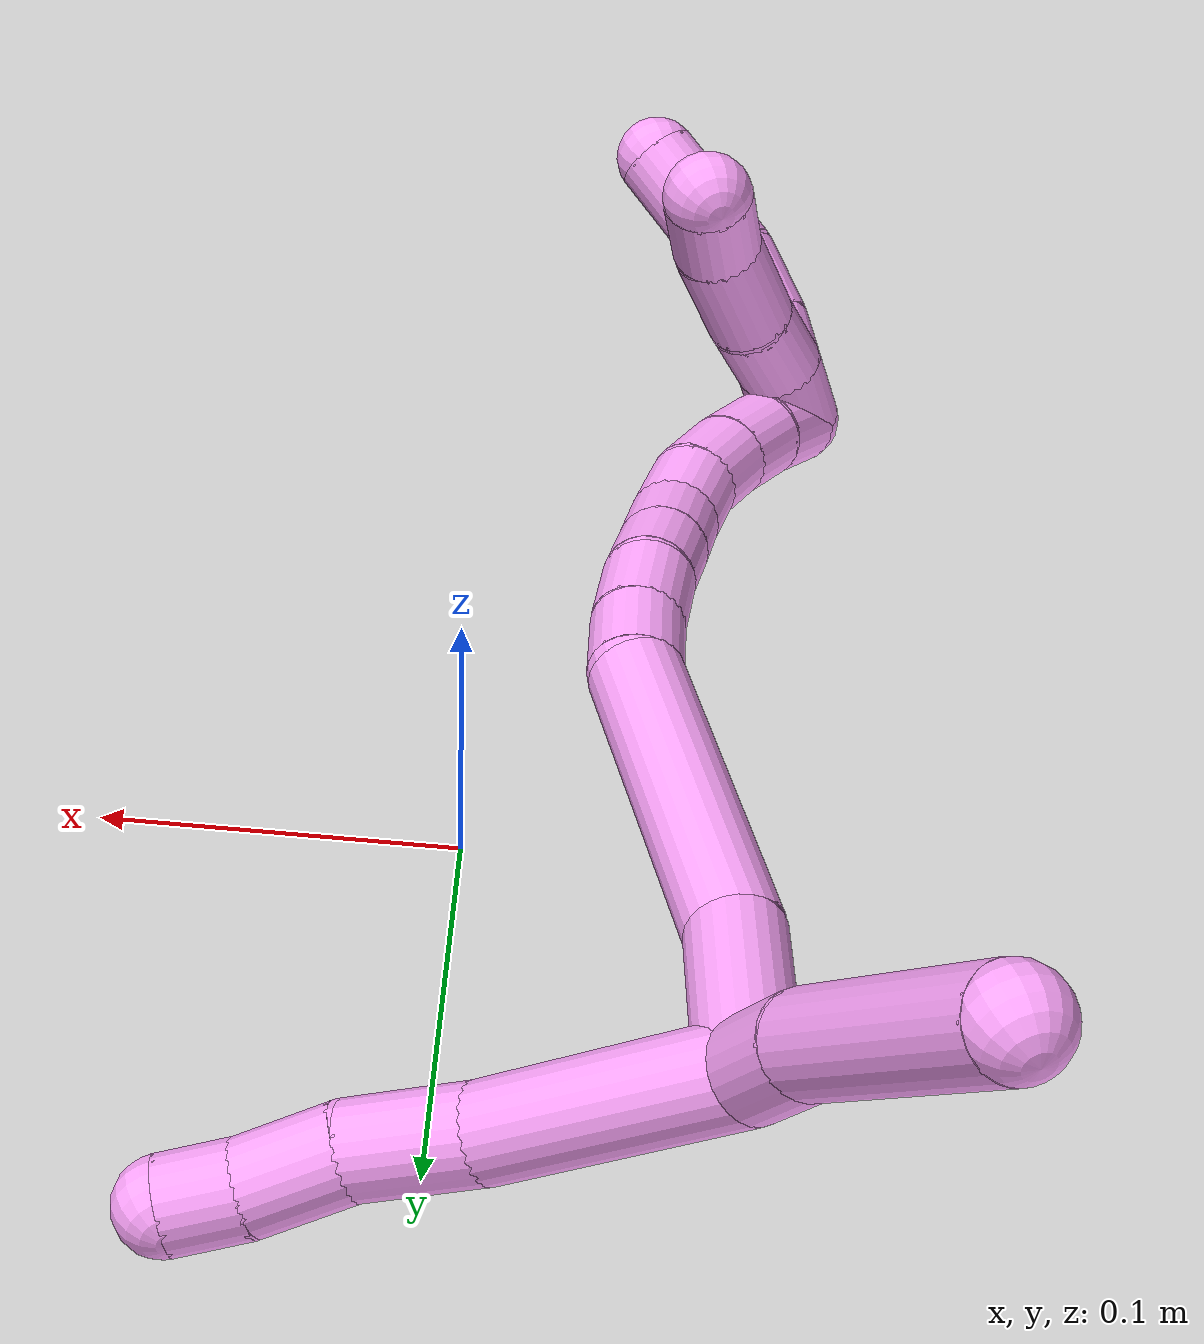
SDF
<sdf version="1.7">
 <world name="default">
  <model name="4">
   <static>0</static>
   <link name="4">
    <collision name="collision-cylinder-e_1_2_8">
     <pose>-0.007603 0.031212 -0.014438 -2.00407 -0.217587 0.338474</pose>
     <geometry><cylinder><radius>0.0125</radius><length>0.070441</length></cylinder></geometry>
     <surface>
      <friction><ode><mu>1.16</mu><mu2>1.16</mu2><slip1>0</slip1><slip2>0</slip2></ode></friction>
      <contact><ode><kp>1e+06</kp><kd>1</kd><max_vel>0</max_vel><min_depth>0.001</min_depth></ode></contact>
     </surface>
    </collision>
    <visual name="visual-cylinder-e_1_2_8">
     <pose>-0.007603 0.031212 -0.014438 -2.00407 -0.217587 0.338474</pose>
     <geometry><cylinder><radius>0.0125</radius><length>0.070441</length></cylinder></geometry>
     <material><ambient>1 0.65098 0.996078 1</ambient></material>
    </visual>
    <collision name="collision-cylinder-e_2_8_9">
     <pose>-0.014588 0.077792 -0.034529 -1.92327 0.03773 -0.054074</pose>
     <geometry><cylinder><radius>0.0125</radius><length>0.032772</length></cylinder></geometry>
     <surface>
      <friction><ode><mu>1.16</mu><mu2>1.16</mu2><slip1>0</slip1><slip2>0</slip2></ode></friction>
      <contact><ode><kp>1e+06</kp><kd>1</kd><max_vel>0</max_vel><min_depth>0.001</min_depth></ode></contact>
     </surface>
    </collision>
    <visual name="visual-cylinder-e_2_8_9">
     <pose>-0.014588 0.077792 -0.034529 -1.92327 0.03773 -0.054074</pose>
     <geometry><cylinder><radius>0.0125</radius><length>0.032772</length></cylinder></geometry>
     <material><ambient>1 0.65098 0.996078 1</ambient></material>
    </visual>
    <collision name="collision-cylinder-e_3_9_10">
     <pose>-0.014344 0.106396 -0.042171 -1.71997 -0.027903 0.032409</pose>
     <geometry><cylinder><radius>0.0125</radius><length>0.026779</length></cylinder></geometry>
     <surface>
      <friction><ode><mu>1.16</mu><mu2>1.16</mu2><slip1>0</slip1><slip2>0</slip2></ode></friction>
      <contact><ode><kp>1e+06</kp><kd>1</kd><max_vel>0</max_vel><min_depth>0.001</min_depth></ode></contact>
     </surface>
    </collision>
    <visual name="visual-cylinder-e_3_9_10">
     <pose>-0.014344 0.106396 -0.042171 -1.71997 -0.027903 0.032409</pose>
     <geometry><cylinder><radius>0.0125</radius><length>0.026779</length></cylinder></geometry>
     <material><ambient>1 0.65098 0.996078 1</ambient></material>
    </visual>
    <collision name="collision-cylinder-e_4_10_6">
     <pose>-0.013127 0.129372 -0.045796 -1.73712 0.159593 -0.188459</pose>
     <geometry><cylinder><radius>0.0125</radius><length>0.020008</length></cylinder></geometry>
     <surface>
      <friction><ode><mu>1.16</mu><mu2>1.16</mu2><slip1>0</slip1><slip2>0</slip2></ode></friction>
      <contact><ode><kp>1e+06</kp><kd>1</kd><max_vel>0</max_vel><min_depth>0.001</min_depth></ode></contact>
     </surface>
    </collision>
    <visual name="visual-cylinder-e_4_10_6">
     <pose>-0.013127 0.129372 -0.045796 -1.73712 0.159593 -0.188459</pose>
     <geometry><cylinder><radius>0.0125</radius><length>0.020008</length></cylinder></geometry>
     <material><ambient>1 0.65098 0.996078 1</ambient></material>
    </visual>
    <collision name="collision-cylinder-e_1_2_11">
     <pose>0.008746 -0.007014 0.007058 0.782242 0.721088 0.308474</pose>
     <geometry><cylinder><radius>0.0125</radius><length>0.026496</length></cylinder></geometry>
     <surface>
      <friction><ode><mu>1.16</mu><mu2>1.16</mu2><slip1>0</slip1><slip2>0</slip2></ode></friction>
      <contact><ode><kp>1e+06</kp><kd>1</kd><max_vel>0</max_vel><min_depth>0.001</min_depth></ode></contact>
     </surface>
    </collision>
    <visual name="visual-cylinder-e_1_2_11">
     <pose>0.008746 -0.007014 0.007058 0.782242 0.721088 0.308474</pose>
     <geometry><cylinder><radius>0.0125</radius><length>0.026496</length></cylinder></geometry>
     <material><ambient>1 0.65098 0.996078 1</ambient></material>
    </visual>
    <collision name="collision-cylinder-e_2_11_5">
     <pose>0.03788 -0.032635 0.038383 0.654169 0.588024 0.204735</pose>
     <geometry><cylinder><radius>0.0125</radius><length>0.073504</length></cylinder></geometry>
     <surface>
      <friction><ode><mu>1.16</mu><mu2>1.16</mu2><slip1>0</slip1><slip2>0</slip2></ode></friction>
      <contact><ode><kp>1e+06</kp><kd>1</kd><max_vel>0</max_vel><min_depth>0.001</min_depth></ode></contact>
     </surface>
    </collision>
    <visual name="visual-cylinder-e_2_11_5">
     <pose>0.03788 -0.032635 0.038383 0.654169 0.588024 0.204735</pose>
     <geometry><cylinder><radius>0.0125</radius><length>0.073504</length></cylinder></geometry>
     <material><ambient>1 0.65098 0.996078 1</ambient></material>
    </visual>
    <collision name="collision-cylinder-e_1_2_12">
     <pose>-0.004466 -0.005064 -0.022501 2.92021 -0.191271 -1.42409</pose>
     <geometry><cylinder><radius>0.0125</radius><length>0.046984</length></cylinder></geometry>
     <surface>
      <friction><ode><mu>1.16</mu><mu2>1.16</mu2><slip1>0</slip1><slip2>0</slip2></ode></friction>
      <contact><ode><kp>1e+06</kp><kd>1</kd><max_vel>0</max_vel><min_depth>0.001</min_depth></ode></contact>
     </surface>
    </collision>
    <visual name="visual-cylinder-e_1_2_12">
     <pose>-0.004466 -0.005064 -0.022501 2.92021 -0.191271 -1.42409</pose>
     <geometry><cylinder><radius>0.0125</radius><length>0.046984</length></cylinder></geometry>
     <material><ambient>1 0.65098 0.996078 1</ambient></material>
    </visual>
    <collision name="collision-cylinder-e_2_12_13">
     <pose>-0.007124 -0.012822 -0.08949 3.08112 0.040537 1.18086</pose>
     <geometry><cylinder><radius>0.0125</radius><length>0.089214</length></cylinder></geometry>
     <surface>
      <friction><ode><mu>1.16</mu><mu2>1.16</mu2><slip1>0</slip1><slip2>0</slip2></ode></friction>
      <contact><ode><kp>1e+06</kp><kd>1</kd><max_vel>0</max_vel><min_depth>0.001</min_depth></ode></contact>
     </surface>
    </collision>
    <visual name="visual-cylinder-e_2_12_13">
     <pose>-0.007124 -0.012822 -0.08949 3.08112 0.040537 1.18086</pose>
     <geometry><cylinder><radius>0.0125</radius><length>0.089214</length></cylinder></geometry>
     <material><ambient>1 0.65098 0.996078 1</ambient></material>
    </visual>
    <collision name="collision-cylinder-e_3_13_14">
     <pose>-0.007287 -0.018525 -0.144054 2.85143 -0.185281 -1.13277</pose>
     <geometry><cylinder><radius>0.0125</radius><length>0.021396</length></cylinder></geometry>
     <surface>
      <friction><ode><mu>1.16</mu><mu2>1.16</mu2><slip1>0</slip1><slip2>0</slip2></ode></friction>
      <contact><ode><kp>1e+06</kp><kd>1</kd><max_vel>0</max_vel><min_depth>0.001</min_depth></ode></contact>
     </surface>
    </collision>
    <visual name="visual-cylinder-e_3_13_14">
     <pose>-0.007287 -0.018525 -0.144054 2.85143 -0.185281 -1.13277</pose>
     <geometry><cylinder><radius>0.0125</radius><length>0.021396</length></cylinder></geometry>
     <material><ambient>1 0.65098 0.996078 1</ambient></material>
    </visual>
    <collision name="collision-cylinder-e_4_14_15">
     <pose>-0.011701 -0.025633 -0.163959 2.74641 -0.225483 -1.02938</pose>
     <geometry><cylinder><radius>0.0125</radius><length>0.021854</length></cylinder></geometry>
     <surface>
      <friction><ode><mu>1.16</mu><mu2>1.16</mu2><slip1>0</slip1><slip2>0</slip2></ode></friction>
      <contact><ode><kp>1e+06</kp><kd>1</kd><max_vel>0</max_vel><min_depth>0.001</min_depth></ode></contact>
     </surface>
    </collision>
    <visual name="visual-cylinder-e_4_14_15">
     <pose>-0.011701 -0.025633 -0.163959 2.74641 -0.225483 -1.02938</pose>
     <geometry><cylinder><radius>0.0125</radius><length>0.021854</length></cylinder></geometry>
     <material><ambient>1 0.65098 0.996078 1</ambient></material>
    </visual>
    <collision name="collision-cylinder-e_5_15_16">
     <pose>-0.018165 -0.033317 -0.182505 2.75154 -0.403296 -1.60508</pose>
     <geometry><cylinder><radius>0.0125</radius><length>0.020492</length></cylinder></geometry>
     <surface>
      <friction><ode><mu>1.16</mu><mu2>1.16</mu2><slip1>0</slip1><slip2>0</slip2></ode></friction>
      <contact><ode><kp>1e+06</kp><kd>1</kd><max_vel>0</max_vel><min_depth>0.001</min_depth></ode></contact>
     </surface>
    </collision>
    <visual name="visual-cylinder-e_5_15_16">
     <pose>-0.018165 -0.033317 -0.182505 2.75154 -0.403296 -1.60508</pose>
     <geometry><cylinder><radius>0.0125</radius><length>0.020492</length></cylinder></geometry>
     <material><ambient>1 0.65098 0.996078 1</ambient></material>
    </visual>
    <collision name="collision-cylinder-e_6_16_17">
     <pose>-0.026104 -0.040276 -0.199798 2.76659 -0.401866 -1.64168</pose>
     <geometry><cylinder><radius>0.0125</radius><length>0.02003</length></cylinder></geometry>
     <surface>
      <friction><ode><mu>1.16</mu><mu2>1.16</mu2><slip1>0</slip1><slip2>0</slip2></ode></friction>
      <contact><ode><kp>1e+06</kp><kd>1</kd><max_vel>0</max_vel><min_depth>0.001</min_depth></ode></contact>
     </surface>
    </collision>
    <visual name="visual-cylinder-e_6_16_17">
     <pose>-0.026104 -0.040276 -0.199798 2.76659 -0.401866 -1.64168</pose>
     <geometry><cylinder><radius>0.0125</radius><length>0.02003</length></cylinder></geometry>
     <material><ambient>1 0.65098 0.996078 1</ambient></material>
    </visual>
    <collision name="collision-cylinder-e_7_17_18">
     <pose>-0.032625 -0.048673 -0.216639 2.59565 -0.263063 -0.882903</pose>
     <geometry><cylinder><radius>0.0125</radius><length>0.020029</length></cylinder></geometry>
     <surface>
      <friction><ode><mu>1.16</mu><mu2>1.16</mu2><slip1>0</slip1><slip2>0</slip2></ode></friction>
      <contact><ode><kp>1e+06</kp><kd>1</kd><max_vel>0</max_vel><min_depth>0.001</min_depth></ode></contact>
     </surface>
    </collision>
    <visual name="visual-cylinder-e_7_17_18">
     <pose>-0.032625 -0.048673 -0.216639 2.59565 -0.263063 -0.882903</pose>
     <geometry><cylinder><radius>0.0125</radius><length>0.020029</length></cylinder></geometry>
     <material><ambient>1 0.65098 0.996078 1</ambient></material>
    </visual>
    <collision name="collision-cylinder-e_8_18_19">
     <pose>-0.039064 -0.059993 -0.231657 2.39096 -0.393548 -0.936846</pose>
     <geometry><cylinder><radius>0.0125</radius><length>0.020001</length></cylinder></geometry>
     <surface>
      <friction><ode><mu>1.16</mu><mu2>1.16</mu2><slip1>0</slip1><slip2>0</slip2></ode></friction>
      <contact><ode><kp>1e+06</kp><kd>1</kd><max_vel>0</max_vel><min_depth>0.001</min_depth></ode></contact>
     </surface>
    </collision>
    <visual name="visual-cylinder-e_8_18_19">
     <pose>-0.039064 -0.059993 -0.231657 2.39096 -0.393548 -0.936846</pose>
     <geometry><cylinder><radius>0.0125</radius><length>0.020001</length></cylinder></geometry>
     <material><ambient>1 0.65098 0.996078 1</ambient></material>
    </visual>
    <collision name="collision-cylinder-e_9_19_20">
     <pose>-0.047311 -0.072887 -0.244498 2.31632 -0.456913 -0.97649</pose>
     <geometry><cylinder><radius>0.0125</radius><length>0.02</length></cylinder></geometry>
     <surface>
      <friction><ode><mu>1.16</mu><mu2>1.16</mu2><slip1>0</slip1><slip2>0</slip2></ode></friction>
      <contact><ode><kp>1e+06</kp><kd>1</kd><max_vel>0</max_vel><min_depth>0.001</min_depth></ode></contact>
     </surface>
    </collision>
    <visual name="visual-cylinder-e_9_19_20">
     <pose>-0.047311 -0.072887 -0.244498 2.31632 -0.456913 -0.97649</pose>
     <geometry><cylinder><radius>0.0125</radius><length>0.02</length></cylinder></geometry>
     <material><ambient>1 0.65098 0.996078 1</ambient></material>
    </visual>
    <collision name="collision-cylinder-e_10_20_1">
     <pose>-0.057152 -0.085514 -0.256427 2.33997 -0.573977 -1.21673</pose>
     <geometry><cylinder><radius>0.0125</radius><length>0.02</length></cylinder></geometry>
     <surface>
      <friction><ode><mu>1.16</mu><mu2>1.16</mu2><slip1>0</slip1><slip2>0</slip2></ode></friction>
      <contact><ode><kp>1e+06</kp><kd>1</kd><max_vel>0</max_vel><min_depth>0.001</min_depth></ode></contact>
     </surface>
    </collision>
    <visual name="visual-cylinder-e_10_20_1">
     <pose>-0.057152 -0.085514 -0.256427 2.33997 -0.573977 -1.21673</pose>
     <geometry><cylinder><radius>0.0125</radius><length>0.02</length></cylinder></geometry>
     <material><ambient>1 0.65098 0.996078 1</ambient></material>
    </visual>
    <collision name="collision-cylinder-e_1_1_21">
     <pose>-0.051266 -0.09204 -0.261941 0.985369 1.51861 0.942484</pose>
     <geometry><cylinder><radius>0.0125</radius><length>0.022664</length></cylinder></geometry>
     <surface>
      <friction><ode><mu>1.16</mu><mu2>1.16</mu2><slip1>0</slip1><slip2>0</slip2></ode></friction>
      <contact><ode><kp>1e+06</kp><kd>1</kd><max_vel>0</max_vel><min_depth>0.001</min_depth></ode></contact>
     </surface>
    </collision>
    <visual name="visual-cylinder-e_1_1_21">
     <pose>-0.051266 -0.09204 -0.261941 0.985369 1.51861 0.942484</pose>
     <geometry><cylinder><radius>0.0125</radius><length>0.022664</length></cylinder></geometry>
     <material><ambient>1 0.65098 0.996078 1</ambient></material>
    </visual>
    <collision name="collision-cylinder-e_2_21_22">
     <pose>-0.027863 -0.090975 -0.259206 -0.574081 1.33777 -0.458462</pose>
     <geometry><cylinder><radius>0.0125</radius><length>0.024843</length></cylinder></geometry>
     <surface>
      <friction><ode><mu>1.16</mu><mu2>1.16</mu2><slip1>0</slip1><slip2>0</slip2></ode></friction>
      <contact><ode><kp>1e+06</kp><kd>1</kd><max_vel>0</max_vel><min_depth>0.001</min_depth></ode></contact>
     </surface>
    </collision>
    <visual name="visual-cylinder-e_2_21_22">
     <pose>-0.027863 -0.090975 -0.259206 -0.574081 1.33777 -0.458462</pose>
     <geometry><cylinder><radius>0.0125</radius><length>0.024843</length></cylinder></geometry>
     <material><ambient>1 0.65098 0.996078 1</ambient></material>
    </visual>
    <collision name="collision-cylinder-e_3_22_23">
     <pose>-0.000605 -0.088568 -0.255105 -0.465176 1.44662 -0.412351</pose>
     <geometry><cylinder><radius>0.0125</radius><length>0.03058</length></cylinder></geometry>
     <surface>
      <friction><ode><mu>1.16</mu><mu2>1.16</mu2><slip1>0</slip1><slip2>0</slip2></ode></friction>
      <contact><ode><kp>1e+06</kp><kd>1</kd><max_vel>0</max_vel><min_depth>0.001</min_depth></ode></contact>
     </surface>
    </collision>
    <visual name="visual-cylinder-e_3_22_23">
     <pose>-0.000605 -0.088568 -0.255105 -0.465176 1.44662 -0.412351</pose>
     <geometry><cylinder><radius>0.0125</radius><length>0.03058</length></cylinder></geometry>
     <material><ambient>1 0.65098 0.996078 1</ambient></material>
    </visual>
    <collision name="collision-cylinder-e_4_23_4">
     <pose>0.025112 -0.088784 -0.250636 0.366481 1.2959 0.278744</pose>
     <geometry><cylinder><radius>0.0125</radius><length>0.021913</length></cylinder></geometry>
     <surface>
      <friction><ode><mu>1.16</mu><mu2>1.16</mu2><slip1>0</slip1><slip2>0</slip2></ode></friction>
      <contact><ode><kp>1e+06</kp><kd>1</kd><max_vel>0</max_vel><min_depth>0.001</min_depth></ode></contact>
     </surface>
    </collision>
    <visual name="visual-cylinder-e_4_23_4">
     <pose>0.025112 -0.088784 -0.250636 0.366481 1.2959 0.278744</pose>
     <geometry><cylinder><radius>0.0125</radius><length>0.021913</length></cylinder></geometry>
     <material><ambient>1 0.65098 0.996078 1</ambient></material>
    </visual>
    <collision name="collision-cylinder-e_1_1_24">
     <pose>-0.056689 -0.094685 -0.278465 2.95028 0.343055 2.12995</pose>
     <geometry><cylinder><radius>0.0125</radius><length>0.035039</length></cylinder></geometry>
     <surface>
      <friction><ode><mu>1.16</mu><mu2>1.16</mu2><slip1>0</slip1><slip2>0</slip2></ode></friction>
      <contact><ode><kp>1e+06</kp><kd>1</kd><max_vel>0</max_vel><min_depth>0.001</min_depth></ode></contact>
     </surface>
    </collision>
    <visual name="visual-cylinder-e_1_1_24">
     <pose>-0.056689 -0.094685 -0.278465 2.95028 0.343055 2.12995</pose>
     <geometry><cylinder><radius>0.0125</radius><length>0.035039</length></cylinder></geometry>
     <material><ambient>1 0.65098 0.996078 1</ambient></material>
    </visual>
    <collision name="collision-cylinder-e_2_24_25">
     <pose>-0.044556 -0.098194 -0.305324 3.10671 0.529284 3.01305</pose>
     <geometry><cylinder><radius>0.0125</radius><length>0.024717</length></cylinder></geometry>
     <surface>
      <friction><ode><mu>1.16</mu><mu2>1.16</mu2><slip1>0</slip1><slip2>0</slip2></ode></friction>
      <contact><ode><kp>1e+06</kp><kd>1</kd><max_vel>0</max_vel><min_depth>0.001</min_depth></ode></contact>
     </surface>
    </collision>
    <visual name="visual-cylinder-e_2_24_25">
     <pose>-0.044556 -0.098194 -0.305324 3.10671 0.529284 3.01305</pose>
     <geometry><cylinder><radius>0.0125</radius><length>0.024717</length></cylinder></geometry>
     <material><ambient>1 0.65098 0.996078 1</ambient></material>
    </visual>
    <collision name="collision-cylinder-e_3_25_3">
     <pose>-0.026884 -0.094848 -0.332121 -2.91514 0.604269 -2.44192</pose>
     <geometry><cylinder><radius>0.0125</radius><length>0.040245</length></cylinder></geometry>
     <surface>
      <friction><ode><mu>1.16</mu><mu2>1.16</mu2><slip1>0</slip1><slip2>0</slip2></ode></friction>
      <contact><ode><kp>1e+06</kp><kd>1</kd><max_vel>0</max_vel><min_depth>0.001</min_depth></ode></contact>
     </surface>
    </collision>
    <visual name="visual-cylinder-e_3_25_3">
     <pose>-0.026884 -0.094848 -0.332121 -2.91514 0.604269 -2.44192</pose>
     <geometry><cylinder><radius>0.0125</radius><length>0.040245</length></cylinder></geometry>
     <material><ambient>1 0.65098 0.996078 1</ambient></material>
    </visual>
    <collision name="collision-sphere-3">
     <pose>-0.015451 -0.09113 -0.348257 0 -0 0</pose>
     <geometry><sphere><radius>0.0125</radius></sphere></geometry>
     <surface>
      <friction><ode><mu>1.16</mu><mu2>1.16</mu2><slip1>0</slip1><slip2>0</slip2></ode></friction>
      <contact><ode><kp>1e+06</kp><kd>1</kd><max_vel>0</max_vel><min_depth>0.001</min_depth></ode></contact>
     </surface>
    </collision>
    <visual name="visual-sphere-3">
     <pose>-0.015451 -0.09113 -0.348257 0 -0 0</pose>
     <geometry><sphere><radius>0.0125</radius></sphere></geometry>
     <material><ambient>1 0.65098 0.996078 1</ambient></material>
    </visual>
    <collision name="collision-sphere-25">
     <pose>-0.038317 -0.098566 -0.315984 0 -0 0</pose>
     <geometry><sphere><radius>0.0125</radius></sphere></geometry>
     <surface>
      <friction><ode><mu>1.16</mu><mu2>1.16</mu2><slip1>0</slip1><slip2>0</slip2></ode></friction>
      <contact><ode><kp>1e+06</kp><kd>1</kd><max_vel>0</max_vel><min_depth>0.001</min_depth></ode></contact>
     </surface>
    </collision>
    <visual name="visual-sphere-25">
     <pose>-0.038317 -0.098566 -0.315984 0 -0 0</pose>
     <geometry><sphere><radius>0.0125</radius></sphere></geometry>
     <material><ambient>1 0.65098 0.996078 1</ambient></material>
    </visual>
    <collision name="collision-sphere-24">
     <pose>-0.050796 -0.097822 -0.294663 0 -0 0</pose>
     <geometry><sphere><radius>0.0125</radius></sphere></geometry>
     <surface>
      <friction><ode><mu>1.16</mu><mu2>1.16</mu2><slip1>0</slip1><slip2>0</slip2></ode></friction>
      <contact><ode><kp>1e+06</kp><kd>1</kd><max_vel>0</max_vel><min_depth>0.001</min_depth></ode></contact>
     </surface>
    </collision>
    <visual name="visual-sphere-24">
     <pose>-0.050796 -0.097822 -0.294663 0 -0 0</pose>
     <geometry><sphere><radius>0.0125</radius></sphere></geometry>
     <material><ambient>1 0.65098 0.996078 1</ambient></material>
    </visual>
    <collision name="collision-sphere-4">
     <pose>0.035657 -0.08985 -0.247859 0 -0 0</pose>
     <geometry><sphere><radius>0.0125</radius></sphere></geometry>
     <surface>
      <friction><ode><mu>1.16</mu><mu2>1.16</mu2><slip1>0</slip1><slip2>0</slip2></ode></friction>
      <contact><ode><kp>1e+06</kp><kd>1</kd><max_vel>0</max_vel><min_depth>0.001</min_depth></ode></contact>
     </surface>
    </collision>
    <visual name="visual-sphere-4">
     <pose>0.035657 -0.08985 -0.247859 0 -0 0</pose>
     <geometry><sphere><radius>0.0125</radius></sphere></geometry>
     <material><ambient>1 0.65098 0.996078 1</ambient></material>
    </visual>
    <collision name="collision-sphere-23">
     <pose>0.014567 -0.087719 -0.253412 0 -0 0</pose>
     <geometry><sphere><radius>0.0125</radius></sphere></geometry>
     <surface>
      <friction><ode><mu>1.16</mu><mu2>1.16</mu2><slip1>0</slip1><slip2>0</slip2></ode></friction>
      <contact><ode><kp>1e+06</kp><kd>1</kd><max_vel>0</max_vel><min_depth>0.001</min_depth></ode></contact>
     </surface>
    </collision>
    <visual name="visual-sphere-23">
     <pose>0.014567 -0.087719 -0.253412 0 -0 0</pose>
     <geometry><sphere><radius>0.0125</radius></sphere></geometry>
     <material><ambient>1 0.65098 0.996078 1</ambient></material>
    </visual>
    <collision name="collision-sphere-22">
     <pose>-0.015778 -0.089418 -0.256797 0 -0 0</pose>
     <geometry><sphere><radius>0.0125</radius></sphere></geometry>
     <surface>
      <friction><ode><mu>1.16</mu><mu2>1.16</mu2><slip1>0</slip1><slip2>0</slip2></ode></friction>
      <contact><ode><kp>1e+06</kp><kd>1</kd><max_vel>0</max_vel><min_depth>0.001</min_depth></ode></contact>
     </surface>
    </collision>
    <visual name="visual-sphere-22">
     <pose>-0.015778 -0.089418 -0.256797 0 -0 0</pose>
     <geometry><sphere><radius>0.0125</radius></sphere></geometry>
     <material><ambient>1 0.65098 0.996078 1</ambient></material>
    </visual>
    <collision name="collision-sphere-21">
     <pose>-0.039949 -0.092533 -0.261615 0 -0 0</pose>
     <geometry><sphere><radius>0.0125</radius></sphere></geometry>
     <surface>
      <friction><ode><mu>1.16</mu><mu2>1.16</mu2><slip1>0</slip1><slip2>0</slip2></ode></friction>
      <contact><ode><kp>1e+06</kp><kd>1</kd><max_vel>0</max_vel><min_depth>0.001</min_depth></ode></contact>
     </surface>
    </collision>
    <visual name="visual-sphere-21">
     <pose>-0.039949 -0.092533 -0.261615 0 -0 0</pose>
     <geometry><sphere><radius>0.0125</radius></sphere></geometry>
     <material><ambient>1 0.65098 0.996078 1</ambient></material>
    </visual>
    <collision name="collision-sphere-1">
     <pose>-0.062582 -0.091548 -0.262268 0 -0 0</pose>
     <geometry><sphere><radius>0.0125</radius></sphere></geometry>
     <surface>
      <friction><ode><mu>1.16</mu><mu2>1.16</mu2><slip1>0</slip1><slip2>0</slip2></ode></friction>
      <contact><ode><kp>1e+06</kp><kd>1</kd><max_vel>0</max_vel><min_depth>0.001</min_depth></ode></contact>
     </surface>
    </collision>
    <visual name="visual-sphere-1">
     <pose>-0.062582 -0.091548 -0.262268 0 -0 0</pose>
     <geometry><sphere><radius>0.0125</radius></sphere></geometry>
     <material><ambient>1 0.65098 0.996078 1</ambient></material>
    </visual>
    <collision name="collision-sphere-11">
     <pose>0.017493 -0.014028 0.014117 0 -0 0</pose>
     <geometry><sphere><radius>0.0125</radius></sphere></geometry>
     <surface>
      <friction><ode><mu>1.16</mu><mu2>1.16</mu2><slip1>0</slip1><slip2>0</slip2></ode></friction>
      <contact><ode><kp>1e+06</kp><kd>1</kd><max_vel>0</max_vel><min_depth>0.001</min_depth></ode></contact>
     </surface>
    </collision>
    <visual name="visual-sphere-11">
     <pose>0.017493 -0.014028 0.014117 0 -0 0</pose>
     <geometry><sphere><radius>0.0125</radius></sphere></geometry>
     <material><ambient>1 0.65098 0.996078 1</ambient></material>
    </visual>
    <collision name="collision-sphere-6">
     <pose>-0.011538 0.139112 -0.047431 0 -0 0</pose>
     <geometry><sphere><radius>0.0125</radius></sphere></geometry>
     <surface>
      <friction><ode><mu>1.16</mu><mu2>1.16</mu2><slip1>0</slip1><slip2>0</slip2></ode></friction>
      <contact><ode><kp>1e+06</kp><kd>1</kd><max_vel>0</max_vel><min_depth>0.001</min_depth></ode></contact>
     </surface>
    </collision>
    <visual name="visual-sphere-6">
     <pose>-0.011538 0.139112 -0.047431 0 -0 0</pose>
     <geometry><sphere><radius>0.0125</radius></sphere></geometry>
     <material><ambient>1 0.65098 0.996078 1</ambient></material>
    </visual>
    <collision name="collision-sphere-10">
     <pose>-0.014717 0.119631 -0.044161 0 -0 0</pose>
     <geometry><sphere><radius>0.0125</radius></sphere></geometry>
     <surface>
      <friction><ode><mu>1.16</mu><mu2>1.16</mu2><slip1>0</slip1><slip2>0</slip2></ode></friction>
      <contact><ode><kp>1e+06</kp><kd>1</kd><max_vel>0</max_vel><min_depth>0.001</min_depth></ode></contact>
     </surface>
    </collision>
    <visual name="visual-sphere-10">
     <pose>-0.014717 0.119631 -0.044161 0 -0 0</pose>
     <geometry><sphere><radius>0.0125</radius></sphere></geometry>
     <material><ambient>1 0.65098 0.996078 1</ambient></material>
    </visual>
    <collision name="collision-sphere-9">
     <pose>-0.01397 0.09316 -0.040182 0 -0 0</pose>
     <geometry><sphere><radius>0.0125</radius></sphere></geometry>
     <surface>
      <friction><ode><mu>1.16</mu><mu2>1.16</mu2><slip1>0</slip1><slip2>0</slip2></ode></friction>
      <contact><ode><kp>1e+06</kp><kd>1</kd><max_vel>0</max_vel><min_depth>0.001</min_depth></ode></contact>
     </surface>
    </collision>
    <visual name="visual-sphere-9">
     <pose>-0.01397 0.09316 -0.040182 0 -0 0</pose>
     <geometry><sphere><radius>0.0125</radius></sphere></geometry>
     <material><ambient>1 0.65098 0.996078 1</ambient></material>
    </visual>
    <collision name="collision-sphere-2">
     <geometry><sphere><radius>0.0125</radius></sphere></geometry>
     <surface>
      <friction><ode><mu>1.16</mu><mu2>1.16</mu2><slip1>0</slip1><slip2>0</slip2></ode></friction>
      <contact><ode><kp>1e+06</kp><kd>1</kd><max_vel>0</max_vel><min_depth>0.001</min_depth></ode></contact>
     </surface>
    </collision>
    <visual name="visual-sphere-2">
     <geometry><sphere><radius>0.0125</radius></sphere></geometry>
     <material><ambient>1 0.65098 0.996078 1</ambient></material>
    </visual>
    <collision name="collision-sphere-19">
     <pose>-0.042899 -0.066293 -0.238411 0 -0 0</pose>
     <geometry><sphere><radius>0.0125</radius></sphere></geometry>
     <surface>
      <friction><ode><mu>1.16</mu><mu2>1.16</mu2><slip1>0</slip1><slip2>0</slip2></ode></friction>
      <contact><ode><kp>1e+06</kp><kd>1</kd><max_vel>0</max_vel><min_depth>0.001</min_depth></ode></contact>
     </surface>
    </collision>
    <visual name="visual-sphere-19">
     <pose>-0.042899 -0.066293 -0.238411 0 -0 0</pose>
     <geometry><sphere><radius>0.0125</radius></sphere></geometry>
     <material><ambient>1 0.65098 0.996078 1</ambient></material>
    </visual>
    <collision name="collision-sphere-8">
     <pose>-0.015206 0.062424 -0.028877 0 -0 0</pose>
     <geometry><sphere><radius>0.0125</radius></sphere></geometry>
     <surface>
      <friction><ode><mu>1.16</mu><mu2>1.16</mu2><slip1>0</slip1><slip2>0</slip2></ode></friction>
      <contact><ode><kp>1e+06</kp><kd>1</kd><max_vel>0</max_vel><min_depth>0.001</min_depth></ode></contact>
     </surface>
    </collision>
    <visual name="visual-sphere-8">
     <pose>-0.015206 0.062424 -0.028877 0 -0 0</pose>
     <geometry><sphere><radius>0.0125</radius></sphere></geometry>
     <material><ambient>1 0.65098 0.996078 1</ambient></material>
    </visual>
    <collision name="collision-sphere-5">
     <pose>0.058267 -0.051242 0.062649 0 -0 0</pose>
     <geometry><sphere><radius>0.0125</radius></sphere></geometry>
     <surface>
      <friction><ode><mu>1.16</mu><mu2>1.16</mu2><slip1>0</slip1><slip2>0</slip2></ode></friction>
      <contact><ode><kp>1e+06</kp><kd>1</kd><max_vel>0</max_vel><min_depth>0.001</min_depth></ode></contact>
     </surface>
    </collision>
    <visual name="visual-sphere-5">
     <pose>0.058267 -0.051242 0.062649 0 -0 0</pose>
     <geometry><sphere><radius>0.0125</radius></sphere></geometry>
     <material><ambient>1 0.65098 0.996078 1</ambient></material>
    </visual>
    <collision name="collision-sphere-12">
     <pose>-0.008932 -0.010129 -0.045002 0 -0 0</pose>
     <geometry><sphere><radius>0.0125</radius></sphere></geometry>
     <surface>
      <friction><ode><mu>1.16</mu><mu2>1.16</mu2><slip1>0</slip1><slip2>0</slip2></ode></friction>
      <contact><ode><kp>1e+06</kp><kd>1</kd><max_vel>0</max_vel><min_depth>0.001</min_depth></ode></contact>
     </surface>
    </collision>
    <visual name="visual-sphere-12">
     <pose>-0.008932 -0.010129 -0.045002 0 -0 0</pose>
     <geometry><sphere><radius>0.0125</radius></sphere></geometry>
     <material><ambient>1 0.65098 0.996078 1</ambient></material>
    </visual>
    <collision name="collision-sphere-13">
     <pose>-0.005317 -0.015516 -0.133979 0 -0 0</pose>
     <geometry><sphere><radius>0.0125</radius></sphere></geometry>
     <surface>
      <friction><ode><mu>1.16</mu><mu2>1.16</mu2><slip1>0</slip1><slip2>0</slip2></ode></friction>
      <contact><ode><kp>1e+06</kp><kd>1</kd><max_vel>0</max_vel><min_depth>0.001</min_depth></ode></contact>
     </surface>
    </collision>
    <visual name="visual-sphere-13">
     <pose>-0.005317 -0.015516 -0.133979 0 -0 0</pose>
     <geometry><sphere><radius>0.0125</radius></sphere></geometry>
     <material><ambient>1 0.65098 0.996078 1</ambient></material>
    </visual>
    <collision name="collision-sphere-14">
     <pose>-0.009258 -0.021533 -0.15413 0 -0 0</pose>
     <geometry><sphere><radius>0.0125</radius></sphere></geometry>
     <surface>
      <friction><ode><mu>1.16</mu><mu2>1.16</mu2><slip1>0</slip1><slip2>0</slip2></ode></friction>
      <contact><ode><kp>1e+06</kp><kd>1</kd><max_vel>0</max_vel><min_depth>0.001</min_depth></ode></contact>
     </surface>
    </collision>
    <visual name="visual-sphere-14">
     <pose>-0.009258 -0.021533 -0.15413 0 -0 0</pose>
     <geometry><sphere><radius>0.0125</radius></sphere></geometry>
     <material><ambient>1 0.65098 0.996078 1</ambient></material>
    </visual>
    <collision name="collision-sphere-15">
     <pose>-0.014144 -0.029733 -0.173789 0 -0 0</pose>
     <geometry><sphere><radius>0.0125</radius></sphere></geometry>
     <surface>
      <friction><ode><mu>1.16</mu><mu2>1.16</mu2><slip1>0</slip1><slip2>0</slip2></ode></friction>
      <contact><ode><kp>1e+06</kp><kd>1</kd><max_vel>0</max_vel><min_depth>0.001</min_depth></ode></contact>
     </surface>
    </collision>
    <visual name="visual-sphere-15">
     <pose>-0.014144 -0.029733 -0.173789 0 -0 0</pose>
     <geometry><sphere><radius>0.0125</radius></sphere></geometry>
     <material><ambient>1 0.65098 0.996078 1</ambient></material>
    </visual>
    <collision name="collision-sphere-16">
     <pose>-0.022186 -0.0369 -0.191221 0 -0 0</pose>
     <geometry><sphere><radius>0.0125</radius></sphere></geometry>
     <surface>
      <friction><ode><mu>1.16</mu><mu2>1.16</mu2><slip1>0</slip1><slip2>0</slip2></ode></friction>
      <contact><ode><kp>1e+06</kp><kd>1</kd><max_vel>0</max_vel><min_depth>0.001</min_depth></ode></contact>
     </surface>
    </collision>
    <visual name="visual-sphere-16">
     <pose>-0.022186 -0.0369 -0.191221 0 -0 0</pose>
     <geometry><sphere><radius>0.0125</radius></sphere></geometry>
     <material><ambient>1 0.65098 0.996078 1</ambient></material>
    </visual>
    <collision name="collision-sphere-17">
     <pose>-0.030021 -0.043652 -0.208374 0 -0 0</pose>
     <geometry><sphere><radius>0.0125</radius></sphere></geometry>
     <surface>
      <friction><ode><mu>1.16</mu><mu2>1.16</mu2><slip1>0</slip1><slip2>0</slip2></ode></friction>
      <contact><ode><kp>1e+06</kp><kd>1</kd><max_vel>0</max_vel><min_depth>0.001</min_depth></ode></contact>
     </surface>
    </collision>
    <visual name="visual-sphere-17">
     <pose>-0.030021 -0.043652 -0.208374 0 -0 0</pose>
     <geometry><sphere><radius>0.0125</radius></sphere></geometry>
     <material><ambient>1 0.65098 0.996078 1</ambient></material>
    </visual>
    <collision name="collision-sphere-18">
     <pose>-0.035229 -0.053694 -0.224903 0 -0 0</pose>
     <geometry><sphere><radius>0.0125</radius></sphere></geometry>
     <surface>
      <friction><ode><mu>1.16</mu><mu2>1.16</mu2><slip1>0</slip1><slip2>0</slip2></ode></friction>
      <contact><ode><kp>1e+06</kp><kd>1</kd><max_vel>0</max_vel><min_depth>0.001</min_depth></ode></contact>
     </surface>
    </collision>
    <visual name="visual-sphere-18">
     <pose>-0.035229 -0.053694 -0.224903 0 -0 0</pose>
     <geometry><sphere><radius>0.0125</radius></sphere></geometry>
     <material><ambient>1 0.65098 0.996078 1</ambient></material>
    </visual>
    <collision name="collision-sphere-20">
     <pose>-0.051722 -0.079481 -0.250586 0 -0 0</pose>
     <geometry><sphere><radius>0.0125</radius></sphere></geometry>
     <surface>
      <friction><ode><mu>1.16</mu><mu2>1.16</mu2><slip1>0</slip1><slip2>0</slip2></ode></friction>
      <contact><ode><kp>1e+06</kp><kd>1</kd><max_vel>0</max_vel><min_depth>0.001</min_depth></ode></contact>
     </surface>
    </collision>
    <visual name="visual-sphere-20">
     <pose>-0.051722 -0.079481 -0.250586 0 -0 0</pose>
     <geometry><sphere><radius>0.0125</radius></sphere></geometry>
     <material><ambient>1 0.65098 0.996078 1</ambient></material>
    </visual>
    <inertial>
     <pose>-0.013083 -0.026842 -0.133286 0 -0 0</pose>
     <mass>0.75</mass>
     <inertia>
      <ixx>0.000156</ixx>
      <ixy>0</ixy>
      <ixz>0</ixz>
      <iyy>6.8e-05</iyy>
      <iyz>0</iyz>
      <izz>-5.8e-05</izz>
     </inertia>
    </inertial>
   </link>
   <pose>-0.075415 0.119103 0.106807 -0.918329 -1.18412 -0.246254</pose>
  </model>
 </world>
</sdf>
